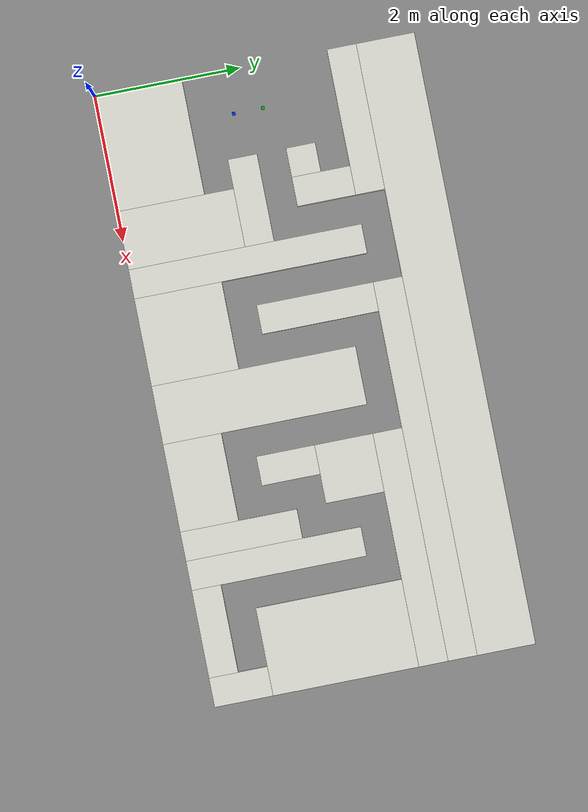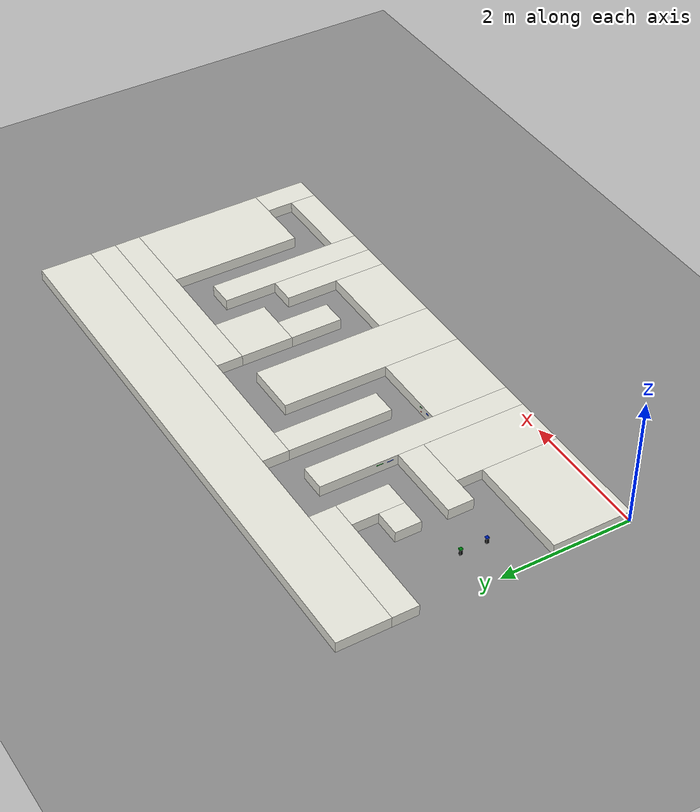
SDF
<sdf version="1.9">
 <world name="ros2_world">
  <model name="ground_plane">
   <static>true</static>
   <link name="link">
    <collision name="collision">
     <geometry><plane><normal>0 0 1</normal><size>30 30</size></plane></geometry>
    </collision>
    <visual name="visual">
     <geometry><plane><normal>0 0 1</normal><size>30 30</size></plane></geometry>
     <material><ambient>0.55 0.55 0.55 1</ambient><diffuse>0.55 0.55 0.55 1</diffuse></material>
    </visual>
   </link>
  </model>
  <model name="paredes">
   <static>true</static>
   <link name="bloque_0">
    <pose>4.2 4 0.085 0 0 0</pose>
    <collision name="colision"><geometry><box><size>8.4 0.8 0.17</size></box></geometry></collision>
    <visual name="visual">
     <geometry><box><size>8.4 0.8 0.17</size></box></geometry>
     <material><ambient>0.9 0.9 0.86 1</ambient><diffuse>0.9 0.9 0.86 1</diffuse></material>
    </visual>
   </link>
   <link name="bloque_1">
    <pose>1 3.4 0.085 0 0 0</pose>
    <collision name="colision"><geometry><box><size>2 0.4 0.17</size></box></geometry></collision>
    <visual name="visual">
     <geometry><box><size>2 0.4 0.17</size></box></geometry>
     <material><ambient>0.9 0.9 0.86 1</ambient><diffuse>0.9 0.9 0.86 1</diffuse></material>
    </visual>
   </link>
   <link name="bloque_2">
    <pose>5.8 3.4 0.085 0 0 0</pose>
    <collision name="colision"><geometry><box><size>5.2 0.4 0.17</size></box></geometry></collision>
    <visual name="visual">
     <geometry><box><size>5.2 0.4 0.17</size></box></geometry>
     <material><ambient>0.9 0.9 0.86 1</ambient><diffuse>0.9 0.9 0.86 1</diffuse></material>
    </visual>
   </link>
   <link name="bloque_3">
    <pose>1.8 2.8 0.085 0 0 0</pose>
    <collision name="colision"><geometry><box><size>0.4 0.8 0.17</size></box></geometry></collision>
    <visual name="visual">
     <geometry><box><size>0.4 0.8 0.17</size></box></geometry>
     <material><ambient>0.9 0.9 0.86 1</ambient><diffuse>0.9 0.9 0.86 1</diffuse></material>
    </visual>
   </link>
   <link name="bloque_4">
    <pose>2.6 1.6 0.085 0 0 0</pose>
    <collision name="colision"><geometry><box><size>0.4 3.2 0.17</size></box></geometry></collision>
    <visual name="visual">
     <geometry><box><size>0.4 3.2 0.17</size></box></geometry>
     <material><ambient>0.9 0.9 0.86 1</ambient><diffuse>0.9 0.9 0.86 1</diffuse></material>
    </visual>
   </link>
   <link name="bloque_5">
    <pose>3.4 2.4 0.085 0 0 0</pose>
    <collision name="colision"><geometry><box><size>0.4 1.6 0.17</size></box></geometry></collision>
    <visual name="visual">
     <geometry><box><size>0.4 1.6 0.17</size></box></geometry>
     <material><ambient>0.9 0.9 0.86 1</ambient><diffuse>0.9 0.9 0.86 1</diffuse></material>
    </visual>
   </link>
   <link name="bloque_6">
    <pose>6.8 3 0.085 0 0 0</pose>
    <collision name="colision"><geometry><box><size>3.2 0.4 0.17</size></box></geometry></collision>
    <visual name="visual">
     <geometry><box><size>3.2 0.4 0.17</size></box></geometry>
     <material><ambient>0.9 0.9 0.86 1</ambient><diffuse>0.9 0.9 0.86 1</diffuse></material>
    </visual>
   </link>
   <link name="bloque_7">
    <pose>1.4 2.6 0.085 0 0 0</pose>
    <collision name="colision"><geometry><box><size>0.4 0.4 0.17</size></box></geometry></collision>
    <visual name="visual">
     <geometry><box><size>0.4 0.4 0.17</size></box></geometry>
     <material><ambient>0.9 0.9 0.86 1</ambient><diffuse>0.9 0.9 0.86 1</diffuse></material>
    </visual>
   </link>
   <link name="bloque_8">
    <pose>4.4 1.4 0.085 0 0 0</pose>
    <collision name="colision"><geometry><box><size>0.8 2.8 0.17</size></box></geometry></collision>
    <visual name="visual">
     <geometry><box><size>0.8 2.8 0.17</size></box></geometry>
     <material><ambient>0.9 0.9 0.86 1</ambient><diffuse>0.9 0.9 0.86 1</diffuse></material>
    </visual>
   </link>
   <link name="bloque_9">
    <pose>5.6 2.4 0.085 0 0 0</pose>
    <collision name="colision"><geometry><box><size>0.8 0.8 0.17</size></box></geometry></collision>
    <visual name="visual">
     <geometry><box><size>0.8 0.8 0.17</size></box></geometry>
     <material><ambient>0.9 0.9 0.86 1</ambient><diffuse>0.9 0.9 0.86 1</diffuse></material>
    </visual>
   </link>
   <link name="bloque_10">
    <pose>7.8 1.8 0.085 0 0 0</pose>
    <collision name="colision"><geometry><box><size>1.2 2 0.17</size></box></geometry></collision>
    <visual name="visual">
     <geometry><box><size>1.2 2 0.17</size></box></geometry>
     <material><ambient>0.9 0.9 0.86 1</ambient><diffuse>0.9 0.9 0.86 1</diffuse></material>
    </visual>
   </link>
   <link name="bloque_11">
    <pose>6.6 1.2 0.085 0 0 0</pose>
    <collision name="colision"><geometry><box><size>0.4 2.4 0.17</size></box></geometry></collision>
    <visual name="visual">
     <geometry><box><size>0.4 2.4 0.17</size></box></geometry>
     <material><ambient>0.9 0.9 0.86 1</ambient><diffuse>0.9 0.9 0.86 1</diffuse></material>
    </visual>
   </link>
   <link name="bloque_12">
    <pose>1.8 1.8 0.085 0 0 0</pose>
    <collision name="colision"><geometry><box><size>1.2 0.4 0.17</size></box></geometry></collision>
    <visual name="visual">
     <geometry><box><size>1.2 0.4 0.17</size></box></geometry>
     <material><ambient>0.9 0.9 0.86 1</ambient><diffuse>0.9 0.9 0.86 1</diffuse></material>
    </visual>
   </link>
   <link name="bloque_13">
    <pose>5.4 1.6 0.085 0 0 0</pose>
    <collision name="colision"><geometry><box><size>0.4 0.8 0.17</size></box></geometry></collision>
    <visual name="visual">
     <geometry><box><size>0.4 0.8 0.17</size></box></geometry>
     <material><ambient>0.9 0.9 0.86 1</ambient><diffuse>0.9 0.9 0.86 1</diffuse></material>
    </visual>
   </link>
   <link name="bloque_14">
    <pose>2 0.8 0.085 0 0 0</pose>
    <collision name="colision"><geometry><box><size>0.8 1.6 0.17</size></box></geometry></collision>
    <visual name="visual">
     <geometry><box><size>0.8 1.6 0.17</size></box></geometry>
     <material><ambient>0.9 0.9 0.86 1</ambient><diffuse>0.9 0.9 0.86 1</diffuse></material>
    </visual>
   </link>
   <link name="bloque_15">
    <pose>6.2 0.8 0.085 0 0 0</pose>
    <collision name="colision"><geometry><box><size>0.4 1.6 0.17</size></box></geometry></collision>
    <visual name="visual">
     <geometry><box><size>0.4 1.6 0.17</size></box></geometry>
     <material><ambient>0.9 0.9 0.86 1</ambient><diffuse>0.9 0.9 0.86 1</diffuse></material>
    </visual>
   </link>
   <link name="bloque_16">
    <pose>0.8 0.6 0.085 0 0 0</pose>
    <collision name="colision"><geometry><box><size>1.6 1.2 0.17</size></box></geometry></collision>
    <visual name="visual">
     <geometry><box><size>1.6 1.2 0.17</size></box></geometry>
     <material><ambient>0.9 0.9 0.86 1</ambient><diffuse>0.9 0.9 0.86 1</diffuse></material>
    </visual>
   </link>
   <link name="bloque_17">
    <pose>3.4 0.6 0.085 0 0 0</pose>
    <collision name="colision"><geometry><box><size>1.2 1.2 0.17</size></box></geometry></collision>
    <visual name="visual">
     <geometry><box><size>1.2 1.2 0.17</size></box></geometry>
     <material><ambient>0.9 0.9 0.86 1</ambient><diffuse>0.9 0.9 0.86 1</diffuse></material>
    </visual>
   </link>
   <link name="bloque_18">
    <pose>5.4 0.4 0.085 0 0 0</pose>
    <collision name="colision"><geometry><box><size>1.2 0.8 0.17</size></box></geometry></collision>
    <visual name="visual">
     <geometry><box><size>1.2 0.8 0.17</size></box></geometry>
     <material><ambient>0.9 0.9 0.86 1</ambient><diffuse>0.9 0.9 0.86 1</diffuse></material>
    </visual>
   </link>
   <link name="bloque_19">
    <pose>8.2 0.4 0.085 0 0 0</pose>
    <collision name="colision"><geometry><box><size>0.4 0.8 0.17</size></box></geometry></collision>
    <visual name="visual">
     <geometry><box><size>0.4 0.8 0.17</size></box></geometry>
     <material><ambient>0.9 0.9 0.86 1</ambient><diffuse>0.9 0.9 0.86 1</diffuse></material>
    </visual>
   </link>
   <link name="bloque_20">
    <pose>7.4 0.2 0.085 0 0 0</pose>
    <collision name="colision"><geometry><box><size>1.2 0.4 0.17</size></box></geometry></collision>
    <visual name="visual">
     <geometry><box><size>1.2 0.4 0.17</size></box></geometry>
     <material><ambient>0.9 0.9 0.86 1</ambient><diffuse>0.9 0.9 0.86 1</diffuse></material>
    </visual>
   </link>
  </model>
  <model name="flechas">
   <static>true</static>
   <link name="flecha_12">
    <pose>2.39875 2.12 0.115 0 0 1.5708</pose>
    <visual name="p0">
     <pose>-0.007 0 0 0 0 0</pose>
     <geometry><box><size>0.085 0.0015 0.01</size></box></geometry>
     <material><ambient>0 0.2 1 1</ambient><diffuse>0 0.2 1 1</diffuse></material>
    </visual>
    <visual name="p1">
     <pose>0.03578 0 0 0 0 0</pose>
     <geometry><box><size>0.00056 0.0015 0.029</size></box></geometry>
     <material><ambient>0 0.2 1 1</ambient><diffuse>0 0.2 1 1</diffuse></material>
    </visual>
    <visual name="p2">
     <pose>0.03634 0 0 0 0 0</pose>
     <geometry><box><size>0.00056 0.0015 0.02784</size></box></geometry>
     <material><ambient>0 0.2 1 1</ambient><diffuse>0 0.2 1 1</diffuse></material>
    </visual>
    <visual name="p3">
     <pose>0.0369 0 0 0 0 0</pose>
     <geometry><box><size>0.00056 0.0015 0.02668</size></box></geometry>
     <material><ambient>0 0.2 1 1</ambient><diffuse>0 0.2 1 1</diffuse></material>
    </visual>
    <visual name="p4">
     <pose>0.03746 0 0 0 0 0</pose>
     <geometry><box><size>0.00056 0.0015 0.02552</size></box></geometry>
     <material><ambient>0 0.2 1 1</ambient><diffuse>0 0.2 1 1</diffuse></material>
    </visual>
    <visual name="p5">
     <pose>0.03802 0 0 0 0 0</pose>
     <geometry><box><size>0.00056 0.0015 0.02436</size></box></geometry>
     <material><ambient>0 0.2 1 1</ambient><diffuse>0 0.2 1 1</diffuse></material>
    </visual>
    <visual name="p6">
     <pose>0.03858 0 0 0 0 0</pose>
     <geometry><box><size>0.00056 0.0015 0.0232</size></box></geometry>
     <material><ambient>0 0.2 1 1</ambient><diffuse>0 0.2 1 1</diffuse></material>
    </visual>
    <visual name="p7">
     <pose>0.03914 0 0 0 0 0</pose>
     <geometry><box><size>0.00056 0.0015 0.02204</size></box></geometry>
     <material><ambient>0 0.2 1 1</ambient><diffuse>0 0.2 1 1</diffuse></material>
    </visual>
    <visual name="p8">
     <pose>0.0397 0 0 0 0 0</pose>
     <geometry><box><size>0.00056 0.0015 0.02088</size></box></geometry>
     <material><ambient>0 0.2 1 1</ambient><diffuse>0 0.2 1 1</diffuse></material>
    </visual>
    <visual name="p9">
     <pose>0.04026 0 0 0 0 0</pose>
     <geometry><box><size>0.00056 0.0015 0.01972</size></box></geometry>
     <material><ambient>0 0.2 1 1</ambient><diffuse>0 0.2 1 1</diffuse></material>
    </visual>
    <visual name="p10">
     <pose>0.04082 0 0 0 0 0</pose>
     <geometry><box><size>0.00056 0.0015 0.01856</size></box></geometry>
     <material><ambient>0 0.2 1 1</ambient><diffuse>0 0.2 1 1</diffuse></material>
    </visual>
    <visual name="p11">
     <pose>0.04138 0 0 0 0 0</pose>
     <geometry><box><size>0.00056 0.0015 0.0174</size></box></geometry>
     <material><ambient>0 0.2 1 1</ambient><diffuse>0 0.2 1 1</diffuse></material>
    </visual>
    <visual name="p12">
     <pose>0.04194 0 0 0 0 0</pose>
     <geometry><box><size>0.00056 0.0015 0.01624</size></box></geometry>
     <material><ambient>0 0.2 1 1</ambient><diffuse>0 0.2 1 1</diffuse></material>
    </visual>
    <visual name="p13">
     <pose>0.0425 0 0 0 0 0</pose>
     <geometry><box><size>0.00056 0.0015 0.01508</size></box></geometry>
     <material><ambient>0 0.2 1 1</ambient><diffuse>0 0.2 1 1</diffuse></material>
    </visual>
    <visual name="p14">
     <pose>0.04306 0 0 0 0 0</pose>
     <geometry><box><size>0.00056 0.0015 0.01392</size></box></geometry>
     <material><ambient>0 0.2 1 1</ambient><diffuse>0 0.2 1 1</diffuse></material>
    </visual>
    <visual name="p15">
     <pose>0.04362 0 0 0 0 0</pose>
     <geometry><box><size>0.00056 0.0015 0.01276</size></box></geometry>
     <material><ambient>0 0.2 1 1</ambient><diffuse>0 0.2 1 1</diffuse></material>
    </visual>
    <visual name="p16">
     <pose>0.04418 0 0 0 0 0</pose>
     <geometry><box><size>0.00056 0.0015 0.0116</size></box></geometry>
     <material><ambient>0 0.2 1 1</ambient><diffuse>0 0.2 1 1</diffuse></material>
    </visual>
    <visual name="p17">
     <pose>0.04474 0 0 0 0 0</pose>
     <geometry><box><size>0.00056 0.0015 0.01044</size></box></geometry>
     <material><ambient>0 0.2 1 1</ambient><diffuse>0 0.2 1 1</diffuse></material>
    </visual>
    <visual name="p18">
     <pose>0.0453 0 0 0 0 0</pose>
     <geometry><box><size>0.00056 0.0015 0.00928</size></box></geometry>
     <material><ambient>0 0.2 1 1</ambient><diffuse>0 0.2 1 1</diffuse></material>
    </visual>
    <visual name="p19">
     <pose>0.04586 0 0 0 0 0</pose>
     <geometry><box><size>0.00056 0.0015 0.00812</size></box></geometry>
     <material><ambient>0 0.2 1 1</ambient><diffuse>0 0.2 1 1</diffuse></material>
    </visual>
    <visual name="p20">
     <pose>0.04642 0 0 0 0 0</pose>
     <geometry><box><size>0.00056 0.0015 0.00696</size></box></geometry>
     <material><ambient>0 0.2 1 1</ambient><diffuse>0 0.2 1 1</diffuse></material>
    </visual>
    <visual name="p21">
     <pose>0.04698 0 0 0 0 0</pose>
     <geometry><box><size>0.00056 0.0015 0.0058</size></box></geometry>
     <material><ambient>0 0.2 1 1</ambient><diffuse>0 0.2 1 1</diffuse></material>
    </visual>
    <visual name="p22">
     <pose>0.04754 0 0 0 0 0</pose>
     <geometry><box><size>0.00056 0.0015 0.00464</size></box></geometry>
     <material><ambient>0 0.2 1 1</ambient><diffuse>0 0.2 1 1</diffuse></material>
    </visual>
    <visual name="p23">
     <pose>0.0481 0 0 0 0 0</pose>
     <geometry><box><size>0.00056 0.0015 0.00348</size></box></geometry>
     <material><ambient>0 0.2 1 1</ambient><diffuse>0 0.2 1 1</diffuse></material>
    </visual>
    <visual name="p24">
     <pose>0.04866 0 0 0 0 0</pose>
     <geometry><box><size>0.00056 0.0015 0.00232</size></box></geometry>
     <material><ambient>0 0.2 1 1</ambient><diffuse>0 0.2 1 1</diffuse></material>
    </visual>
    <visual name="p25">
     <pose>0.04922 0 0 0 0 0</pose>
     <geometry><box><size>0.00056 0.0015 0.00116</size></box></geometry>
     <material><ambient>0 0.2 1 1</ambient><diffuse>0 0.2 1 1</diffuse></material>
    </visual>
   </link>
   <link name="flecha_13">
    <pose>2.39875 2.28 0.125 0 0 1.5708</pose>
    <visual name="p0">
     <pose>-0.007 0 0 0 0 0</pose>
     <geometry><box><size>0.085 0.0015 0.01</size></box></geometry>
     <material><ambient>0 0.7 0.1 1</ambient><diffuse>0 0.7 0.1 1</diffuse></material>
    </visual>
    <visual name="p1">
     <pose>0.03578 0 0 0 0 0</pose>
     <geometry><box><size>0.00056 0.0015 0.029</size></box></geometry>
     <material><ambient>0 0.7 0.1 1</ambient><diffuse>0 0.7 0.1 1</diffuse></material>
    </visual>
    <visual name="p2">
     <pose>0.03634 0 0 0 0 0</pose>
     <geometry><box><size>0.00056 0.0015 0.02784</size></box></geometry>
     <material><ambient>0 0.7 0.1 1</ambient><diffuse>0 0.7 0.1 1</diffuse></material>
    </visual>
    <visual name="p3">
     <pose>0.0369 0 0 0 0 0</pose>
     <geometry><box><size>0.00056 0.0015 0.02668</size></box></geometry>
     <material><ambient>0 0.7 0.1 1</ambient><diffuse>0 0.7 0.1 1</diffuse></material>
    </visual>
    <visual name="p4">
     <pose>0.03746 0 0 0 0 0</pose>
     <geometry><box><size>0.00056 0.0015 0.02552</size></box></geometry>
     <material><ambient>0 0.7 0.1 1</ambient><diffuse>0 0.7 0.1 1</diffuse></material>
    </visual>
    <visual name="p5">
     <pose>0.03802 0 0 0 0 0</pose>
     <geometry><box><size>0.00056 0.0015 0.02436</size></box></geometry>
     <material><ambient>0 0.7 0.1 1</ambient><diffuse>0 0.7 0.1 1</diffuse></material>
    </visual>
    <visual name="p6">
     <pose>0.03858 0 0 0 0 0</pose>
     <geometry><box><size>0.00056 0.0015 0.0232</size></box></geometry>
     <material><ambient>0 0.7 0.1 1</ambient><diffuse>0 0.7 0.1 1</diffuse></material>
    </visual>
    <visual name="p7">
     <pose>0.03914 0 0 0 0 0</pose>
     <geometry><box><size>0.00056 0.0015 0.02204</size></box></geometry>
     <material><ambient>0 0.7 0.1 1</ambient><diffuse>0 0.7 0.1 1</diffuse></material>
    </visual>
    <visual name="p8">
     <pose>0.0397 0 0 0 0 0</pose>
     <geometry><box><size>0.00056 0.0015 0.02088</size></box></geometry>
     <material><ambient>0 0.7 0.1 1</ambient><diffuse>0 0.7 0.1 1</diffuse></material>
    </visual>
    <visual name="p9">
     <pose>0.04026 0 0 0 0 0</pose>
     <geometry><box><size>0.00056 0.0015 0.01972</size></box></geometry>
     <material><ambient>0 0.7 0.1 1</ambient><diffuse>0 0.7 0.1 1</diffuse></material>
    </visual>
    <visual name="p10">
     <pose>0.04082 0 0 0 0 0</pose>
     <geometry><box><size>0.00056 0.0015 0.01856</size></box></geometry>
     <material><ambient>0 0.7 0.1 1</ambient><diffuse>0 0.7 0.1 1</diffuse></material>
    </visual>
    <visual name="p11">
     <pose>0.04138 0 0 0 0 0</pose>
     <geometry><box><size>0.00056 0.0015 0.0174</size></box></geometry>
     <material><ambient>0 0.7 0.1 1</ambient><diffuse>0 0.7 0.1 1</diffuse></material>
    </visual>
    <visual name="p12">
     <pose>0.04194 0 0 0 0 0</pose>
     <geometry><box><size>0.00056 0.0015 0.01624</size></box></geometry>
     <material><ambient>0 0.7 0.1 1</ambient><diffuse>0 0.7 0.1 1</diffuse></material>
    </visual>
    <visual name="p13">
     <pose>0.0425 0 0 0 0 0</pose>
     <geometry><box><size>0.00056 0.0015 0.01508</size></box></geometry>
     <material><ambient>0 0.7 0.1 1</ambient><diffuse>0 0.7 0.1 1</diffuse></material>
    </visual>
    <visual name="p14">
     <pose>0.04306 0 0 0 0 0</pose>
     <geometry><box><size>0.00056 0.0015 0.01392</size></box></geometry>
     <material><ambient>0 0.7 0.1 1</ambient><diffuse>0 0.7 0.1 1</diffuse></material>
    </visual>
    <visual name="p15">
     <pose>0.04362 0 0 0 0 0</pose>
     <geometry><box><size>0.00056 0.0015 0.01276</size></box></geometry>
     <material><ambient>0 0.7 0.1 1</ambient><diffuse>0 0.7 0.1 1</diffuse></material>
    </visual>
    <visual name="p16">
     <pose>0.04418 0 0 0 0 0</pose>
     <geometry><box><size>0.00056 0.0015 0.0116</size></box></geometry>
     <material><ambient>0 0.7 0.1 1</ambient><diffuse>0 0.7 0.1 1</diffuse></material>
    </visual>
    <visual name="p17">
     <pose>0.04474 0 0 0 0 0</pose>
     <geometry><box><size>0.00056 0.0015 0.01044</size></box></geometry>
     <material><ambient>0 0.7 0.1 1</ambient><diffuse>0 0.7 0.1 1</diffuse></material>
    </visual>
    <visual name="p18">
     <pose>0.0453 0 0 0 0 0</pose>
     <geometry><box><size>0.00056 0.0015 0.00928</size></box></geometry>
     <material><ambient>0 0.7 0.1 1</ambient><diffuse>0 0.7 0.1 1</diffuse></material>
    </visual>
    <visual name="p19">
     <pose>0.04586 0 0 0 0 0</pose>
     <geometry><box><size>0.00056 0.0015 0.00812</size></box></geometry>
     <material><ambient>0 0.7 0.1 1</ambient><diffuse>0 0.7 0.1 1</diffuse></material>
    </visual>
    <visual name="p20">
     <pose>0.04642 0 0 0 0 0</pose>
     <geometry><box><size>0.00056 0.0015 0.00696</size></box></geometry>
     <material><ambient>0 0.7 0.1 1</ambient><diffuse>0 0.7 0.1 1</diffuse></material>
    </visual>
    <visual name="p21">
     <pose>0.04698 0 0 0 0 0</pose>
     <geometry><box><size>0.00056 0.0015 0.0058</size></box></geometry>
     <material><ambient>0 0.7 0.1 1</ambient><diffuse>0 0.7 0.1 1</diffuse></material>
    </visual>
    <visual name="p22">
     <pose>0.04754 0 0 0 0 0</pose>
     <geometry><box><size>0.00056 0.0015 0.00464</size></box></geometry>
     <material><ambient>0 0.7 0.1 1</ambient><diffuse>0 0.7 0.1 1</diffuse></material>
    </visual>
    <visual name="p23">
     <pose>0.0481 0 0 0 0 0</pose>
     <geometry><box><size>0.00056 0.0015 0.00348</size></box></geometry>
     <material><ambient>0 0.7 0.1 1</ambient><diffuse>0 0.7 0.1 1</diffuse></material>
    </visual>
    <visual name="p24">
     <pose>0.04866 0 0 0 0 0</pose>
     <geometry><box><size>0.00056 0.0015 0.00232</size></box></geometry>
     <material><ambient>0 0.7 0.1 1</ambient><diffuse>0 0.7 0.1 1</diffuse></material>
    </visual>
    <visual name="p25">
     <pose>0.04922 0 0 0 0 0</pose>
     <geometry><box><size>0.00056 0.0015 0.00116</size></box></geometry>
     <material><ambient>0 0.7 0.1 1</ambient><diffuse>0 0.7 0.1 1</diffuse></material>
    </visual>
   </link>
   <link name="flecha_17">
    <pose>2.92 1.20125 0.115 0 0 0</pose>
    <visual name="p0">
     <pose>-0.0065 0 0 0 0 0</pose>
     <geometry><box><size>0.047 0.0015 0.01</size></box></geometry>
     <material><ambient>0 0.2 1 1</ambient><diffuse>0 0.2 1 1</diffuse></material>
    </visual>
    <visual name="p1">
     <pose>0.01726 0 0 0 0 0</pose>
     <geometry><box><size>0.00052 0.0015 0.029</size></box></geometry>
     <material><ambient>0 0.2 1 1</ambient><diffuse>0 0.2 1 1</diffuse></material>
    </visual>
    <visual name="p2">
     <pose>0.01778 0 0 0 0 0</pose>
     <geometry><box><size>0.00052 0.0015 0.02784</size></box></geometry>
     <material><ambient>0 0.2 1 1</ambient><diffuse>0 0.2 1 1</diffuse></material>
    </visual>
    <visual name="p3">
     <pose>0.0183 0 0 0 0 0</pose>
     <geometry><box><size>0.00052 0.0015 0.02668</size></box></geometry>
     <material><ambient>0 0.2 1 1</ambient><diffuse>0 0.2 1 1</diffuse></material>
    </visual>
    <visual name="p4">
     <pose>0.01882 0 0 0 0 0</pose>
     <geometry><box><size>0.00052 0.0015 0.02552</size></box></geometry>
     <material><ambient>0 0.2 1 1</ambient><diffuse>0 0.2 1 1</diffuse></material>
    </visual>
    <visual name="p5">
     <pose>0.01934 0 0 0 0 0</pose>
     <geometry><box><size>0.00052 0.0015 0.02436</size></box></geometry>
     <material><ambient>0 0.2 1 1</ambient><diffuse>0 0.2 1 1</diffuse></material>
    </visual>
    <visual name="p6">
     <pose>0.01986 0 0 0 0 0</pose>
     <geometry><box><size>0.00052 0.0015 0.0232</size></box></geometry>
     <material><ambient>0 0.2 1 1</ambient><diffuse>0 0.2 1 1</diffuse></material>
    </visual>
    <visual name="p7">
     <pose>0.02038 0 0 0 0 0</pose>
     <geometry><box><size>0.00052 0.0015 0.02204</size></box></geometry>
     <material><ambient>0 0.2 1 1</ambient><diffuse>0 0.2 1 1</diffuse></material>
    </visual>
    <visual name="p8">
     <pose>0.0209 0 0 0 0 0</pose>
     <geometry><box><size>0.00052 0.0015 0.02088</size></box></geometry>
     <material><ambient>0 0.2 1 1</ambient><diffuse>0 0.2 1 1</diffuse></material>
    </visual>
    <visual name="p9">
     <pose>0.02142 0 0 0 0 0</pose>
     <geometry><box><size>0.00052 0.0015 0.01972</size></box></geometry>
     <material><ambient>0 0.2 1 1</ambient><diffuse>0 0.2 1 1</diffuse></material>
    </visual>
    <visual name="p10">
     <pose>0.02194 0 0 0 0 0</pose>
     <geometry><box><size>0.00052 0.0015 0.01856</size></box></geometry>
     <material><ambient>0 0.2 1 1</ambient><diffuse>0 0.2 1 1</diffuse></material>
    </visual>
    <visual name="p11">
     <pose>0.02246 0 0 0 0 0</pose>
     <geometry><box><size>0.00052 0.0015 0.0174</size></box></geometry>
     <material><ambient>0 0.2 1 1</ambient><diffuse>0 0.2 1 1</diffuse></material>
    </visual>
    <visual name="p12">
     <pose>0.02298 0 0 0 0 0</pose>
     <geometry><box><size>0.00052 0.0015 0.01624</size></box></geometry>
     <material><ambient>0 0.2 1 1</ambient><diffuse>0 0.2 1 1</diffuse></material>
    </visual>
    <visual name="p13">
     <pose>0.0235 0 0 0 0 0</pose>
     <geometry><box><size>0.00052 0.0015 0.01508</size></box></geometry>
     <material><ambient>0 0.2 1 1</ambient><diffuse>0 0.2 1 1</diffuse></material>
    </visual>
    <visual name="p14">
     <pose>0.02402 0 0 0 0 0</pose>
     <geometry><box><size>0.00052 0.0015 0.01392</size></box></geometry>
     <material><ambient>0 0.2 1 1</ambient><diffuse>0 0.2 1 1</diffuse></material>
    </visual>
    <visual name="p15">
     <pose>0.02454 0 0 0 0 0</pose>
     <geometry><box><size>0.00052 0.0015 0.01276</size></box></geometry>
     <material><ambient>0 0.2 1 1</ambient><diffuse>0 0.2 1 1</diffuse></material>
    </visual>
    <visual name="p16">
     <pose>0.02506 0 0 0 0 0</pose>
     <geometry><box><size>0.00052 0.0015 0.0116</size></box></geometry>
     <material><ambient>0 0.2 1 1</ambient><diffuse>0 0.2 1 1</diffuse></material>
    </visual>
    <visual name="p17">
     <pose>0.02558 0 0 0 0 0</pose>
     <geometry><box><size>0.00052 0.0015 0.01044</size></box></geometry>
     <material><ambient>0 0.2 1 1</ambient><diffuse>0 0.2 1 1</diffuse></material>
    </visual>
    <visual name="p18">
     <pose>0.0261 0 0 0 0 0</pose>
     <geometry><box><size>0.00052 0.0015 0.00928</size></box></geometry>
     <material><ambient>0 0.2 1 1</ambient><diffuse>0 0.2 1 1</diffuse></material>
    </visual>
    <visual name="p19">
     <pose>0.02662 0 0 0 0 0</pose>
     <geometry><box><size>0.00052 0.0015 0.00812</size></box></geometry>
     <material><ambient>0 0.2 1 1</ambient><diffuse>0 0.2 1 1</diffuse></material>
    </visual>
    <visual name="p20">
     <pose>0.02714 0 0 0 0 0</pose>
     <geometry><box><size>0.00052 0.0015 0.00696</size></box></geometry>
     <material><ambient>0 0.2 1 1</ambient><diffuse>0 0.2 1 1</diffuse></material>
    </visual>
    <visual name="p21">
     <pose>0.02766 0 0 0 0 0</pose>
     <geometry><box><size>0.00052 0.0015 0.0058</size></box></geometry>
     <material><ambient>0 0.2 1 1</ambient><diffuse>0 0.2 1 1</diffuse></material>
    </visual>
    <visual name="p22">
     <pose>0.02818 0 0 0 0 0</pose>
     <geometry><box><size>0.00052 0.0015 0.00464</size></box></geometry>
     <material><ambient>0 0.2 1 1</ambient><diffuse>0 0.2 1 1</diffuse></material>
    </visual>
    <visual name="p23">
     <pose>0.0287 0 0 0 0 0</pose>
     <geometry><box><size>0.00052 0.0015 0.00348</size></box></geometry>
     <material><ambient>0 0.2 1 1</ambient><diffuse>0 0.2 1 1</diffuse></material>
    </visual>
    <visual name="p24">
     <pose>0.02922 0 0 0 0 0</pose>
     <geometry><box><size>0.00052 0.0015 0.00232</size></box></geometry>
     <material><ambient>0 0.2 1 1</ambient><diffuse>0 0.2 1 1</diffuse></material>
    </visual>
    <visual name="p25">
     <pose>0.02974 0 0 0 0 0</pose>
     <geometry><box><size>0.00052 0.0015 0.00116</size></box></geometry>
     <material><ambient>0 0.2 1 1</ambient><diffuse>0 0.2 1 1</diffuse></material>
    </visual>
   </link>
   <link name="flecha_18">
    <pose>3.08 1.20125 0.125 0 0 0</pose>
    <visual name="p0">
     <pose>-0.0065 0 0 0 0 0</pose>
     <geometry><box><size>0.047 0.0015 0.01</size></box></geometry>
     <material><ambient>0 0.7 0.1 1</ambient><diffuse>0 0.7 0.1 1</diffuse></material>
    </visual>
    <visual name="p1">
     <pose>0.01726 0 0 0 0 0</pose>
     <geometry><box><size>0.00052 0.0015 0.029</size></box></geometry>
     <material><ambient>0 0.7 0.1 1</ambient><diffuse>0 0.7 0.1 1</diffuse></material>
    </visual>
    <visual name="p2">
     <pose>0.01778 0 0 0 0 0</pose>
     <geometry><box><size>0.00052 0.0015 0.02784</size></box></geometry>
     <material><ambient>0 0.7 0.1 1</ambient><diffuse>0 0.7 0.1 1</diffuse></material>
    </visual>
    <visual name="p3">
     <pose>0.0183 0 0 0 0 0</pose>
     <geometry><box><size>0.00052 0.0015 0.02668</size></box></geometry>
     <material><ambient>0 0.7 0.1 1</ambient><diffuse>0 0.7 0.1 1</diffuse></material>
    </visual>
    <visual name="p4">
     <pose>0.01882 0 0 0 0 0</pose>
     <geometry><box><size>0.00052 0.0015 0.02552</size></box></geometry>
     <material><ambient>0 0.7 0.1 1</ambient><diffuse>0 0.7 0.1 1</diffuse></material>
    </visual>
    <visual name="p5">
     <pose>0.01934 0 0 0 0 0</pose>
     <geometry><box><size>0.00052 0.0015 0.02436</size></box></geometry>
     <material><ambient>0 0.7 0.1 1</ambient><diffuse>0 0.7 0.1 1</diffuse></material>
    </visual>
    <visual name="p6">
     <pose>0.01986 0 0 0 0 0</pose>
     <geometry><box><size>0.00052 0.0015 0.0232</size></box></geometry>
     <material><ambient>0 0.7 0.1 1</ambient><diffuse>0 0.7 0.1 1</diffuse></material>
    </visual>
    <visual name="p7">
     <pose>0.02038 0 0 0 0 0</pose>
     <geometry><box><size>0.00052 0.0015 0.02204</size></box></geometry>
     <material><ambient>0 0.7 0.1 1</ambient><diffuse>0 0.7 0.1 1</diffuse></material>
    </visual>
    <visual name="p8">
     <pose>0.0209 0 0 0 0 0</pose>
     <geometry><box><size>0.00052 0.0015 0.02088</size></box></geometry>
     <material><ambient>0 0.7 0.1 1</ambient><diffuse>0 0.7 0.1 1</diffuse></material>
    </visual>
    <visual name="p9">
     <pose>0.02142 0 0 0 0 0</pose>
     <geometry><box><size>0.00052 0.0015 0.01972</size></box></geometry>
     <material><ambient>0 0.7 0.1 1</ambient><diffuse>0 0.7 0.1 1</diffuse></material>
    </visual>
    <visual name="p10">
     <pose>0.02194 0 0 0 0 0</pose>
     <geometry><box><size>0.00052 0.0015 0.01856</size></box></geometry>
     <material><ambient>0 0.7 0.1 1</ambient><diffuse>0 0.7 0.1 1</diffuse></material>
    </visual>
    <visual name="p11">
     <pose>0.02246 0 0 0 0 0</pose>
     <geometry><box><size>0.00052 0.0015 0.0174</size></box></geometry>
     <material><ambient>0 0.7 0.1 1</ambient><diffuse>0 0.7 0.1 1</diffuse></material>
    </visual>
    <visual name="p12">
     <pose>0.02298 0 0 0 0 0</pose>
     <geometry><box><size>0.00052 0.0015 0.01624</size></box></geometry>
     <material><ambient>0 0.7 0.1 1</ambient><diffuse>0 0.7 0.1 1</diffuse></material>
    </visual>
    <visual name="p13">
     <pose>0.0235 0 0 0 0 0</pose>
     <geometry><box><size>0.00052 0.0015 0.01508</size></box></geometry>
     <material><ambient>0 0.7 0.1 1</ambient><diffuse>0 0.7 0.1 1</diffuse></material>
    </visual>
    <visual name="p14">
     <pose>0.02402 0 0 0 0 0</pose>
     <geometry><box><size>0.00052 0.0015 0.01392</size></box></geometry>
     <material><ambient>0 0.7 0.1 1</ambient><diffuse>0 0.7 0.1 1</diffuse></material>
    </visual>
    <visual name="p15">
     <pose>0.02454 0 0 0 0 0</pose>
     <geometry><box><size>0.00052 0.0015 0.01276</size></box></geometry>
     <material><ambient>0 0.7 0.1 1</ambient><diffuse>0 0.7 0.1 1</diffuse></material>
    </visual>
    <visual name="p16">
     <pose>0.02506 0 0 0 0 0</pose>
     <geometry><box><size>0.00052 0.0015 0.0116</size></box></geometry>
     <material><ambient>0 0.7 0.1 1</ambient><diffuse>0 0.7 0.1 1</diffuse></material>
    </visual>
    <visual name="p17">
     <pose>0.02558 0 0 0 0 0</pose>
     <geometry><box><size>0.00052 0.0015 0.01044</size></box></geometry>
     <material><ambient>0 0.7 0.1 1</ambient><diffuse>0 0.7 0.1 1</diffuse></material>
    </visual>
    <visual name="p18">
     <pose>0.0261 0 0 0 0 0</pose>
     <geometry><box><size>0.00052 0.0015 0.00928</size></box></geometry>
     <material><ambient>0 0.7 0.1 1</ambient><diffuse>0 0.7 0.1 1</diffuse></material>
    </visual>
    <visual name="p19">
     <pose>0.02662 0 0 0 0 0</pose>
     <geometry><box><size>0.00052 0.0015 0.00812</size></box></geometry>
     <material><ambient>0 0.7 0.1 1</ambient><diffuse>0 0.7 0.1 1</diffuse></material>
    </visual>
    <visual name="p20">
     <pose>0.02714 0 0 0 0 0</pose>
     <geometry><box><size>0.00052 0.0015 0.00696</size></box></geometry>
     <material><ambient>0 0.7 0.1 1</ambient><diffuse>0 0.7 0.1 1</diffuse></material>
    </visual>
    <visual name="p21">
     <pose>0.02766 0 0 0 0 0</pose>
     <geometry><box><size>0.00052 0.0015 0.0058</size></box></geometry>
     <material><ambient>0 0.7 0.1 1</ambient><diffuse>0 0.7 0.1 1</diffuse></material>
    </visual>
    <visual name="p22">
     <pose>0.02818 0 0 0 0 0</pose>
     <geometry><box><size>0.00052 0.0015 0.00464</size></box></geometry>
     <material><ambient>0 0.7 0.1 1</ambient><diffuse>0 0.7 0.1 1</diffuse></material>
    </visual>
    <visual name="p23">
     <pose>0.0287 0 0 0 0 0</pose>
     <geometry><box><size>0.00052 0.0015 0.00348</size></box></geometry>
     <material><ambient>0 0.7 0.1 1</ambient><diffuse>0 0.7 0.1 1</diffuse></material>
    </visual>
    <visual name="p24">
     <pose>0.02922 0 0 0 0 0</pose>
     <geometry><box><size>0.00052 0.0015 0.00232</size></box></geometry>
     <material><ambient>0 0.7 0.1 1</ambient><diffuse>0 0.7 0.1 1</diffuse></material>
    </visual>
    <visual name="p25">
     <pose>0.02974 0 0 0 0 0</pose>
     <geometry><box><size>0.00052 0.0015 0.00116</size></box></geometry>
     <material><ambient>0 0.7 0.1 1</ambient><diffuse>0 0.7 0.1 1</diffuse></material>
    </visual>
   </link>
   <link name="flecha_19">
    <pose>3.08 1.20125 0.045 0 0 0</pose>
    <visual name="p0">
     <pose>-0.0055 0 0 0 0 0</pose>
     <geometry><box><size>0.019 0.0015 0.01</size></box></geometry>
     <material><ambient>1 0 0 1</ambient><diffuse>1 0 0 1</diffuse></material>
    </visual>
    <visual name="p1">
     <pose>0.00422 0 0 0 0 0</pose>
     <geometry><box><size>0.00044 0.0015 0.03</size></box></geometry>
     <material><ambient>1 0 0 1</ambient><diffuse>1 0 0 1</diffuse></material>
    </visual>
    <visual name="p2">
     <pose>0.00466 0 0 0 0 0</pose>
     <geometry><box><size>0.00044 0.0015 0.0288</size></box></geometry>
     <material><ambient>1 0 0 1</ambient><diffuse>1 0 0 1</diffuse></material>
    </visual>
    <visual name="p3">
     <pose>0.0051 0 0 0 0 0</pose>
     <geometry><box><size>0.00044 0.0015 0.0276</size></box></geometry>
     <material><ambient>1 0 0 1</ambient><diffuse>1 0 0 1</diffuse></material>
    </visual>
    <visual name="p4">
     <pose>0.00554 0 0 0 0 0</pose>
     <geometry><box><size>0.00044 0.0015 0.0264</size></box></geometry>
     <material><ambient>1 0 0 1</ambient><diffuse>1 0 0 1</diffuse></material>
    </visual>
    <visual name="p5">
     <pose>0.00598 0 0 0 0 0</pose>
     <geometry><box><size>0.00044 0.0015 0.0252</size></box></geometry>
     <material><ambient>1 0 0 1</ambient><diffuse>1 0 0 1</diffuse></material>
    </visual>
    <visual name="p6">
     <pose>0.00642 0 0 0 0 0</pose>
     <geometry><box><size>0.00044 0.0015 0.024</size></box></geometry>
     <material><ambient>1 0 0 1</ambient><diffuse>1 0 0 1</diffuse></material>
    </visual>
    <visual name="p7">
     <pose>0.00686 0 0 0 0 0</pose>
     <geometry><box><size>0.00044 0.0015 0.0228</size></box></geometry>
     <material><ambient>1 0 0 1</ambient><diffuse>1 0 0 1</diffuse></material>
    </visual>
    <visual name="p8">
     <pose>0.0073 0 0 0 0 0</pose>
     <geometry><box><size>0.00044 0.0015 0.0216</size></box></geometry>
     <material><ambient>1 0 0 1</ambient><diffuse>1 0 0 1</diffuse></material>
    </visual>
    <visual name="p9">
     <pose>0.00774 0 0 0 0 0</pose>
     <geometry><box><size>0.00044 0.0015 0.0204</size></box></geometry>
     <material><ambient>1 0 0 1</ambient><diffuse>1 0 0 1</diffuse></material>
    </visual>
    <visual name="p10">
     <pose>0.00818 0 0 0 0 0</pose>
     <geometry><box><size>0.00044 0.0015 0.0192</size></box></geometry>
     <material><ambient>1 0 0 1</ambient><diffuse>1 0 0 1</diffuse></material>
    </visual>
    <visual name="p11">
     <pose>0.00862 0 0 0 0 0</pose>
     <geometry><box><size>0.00044 0.0015 0.018</size></box></geometry>
     <material><ambient>1 0 0 1</ambient><diffuse>1 0 0 1</diffuse></material>
    </visual>
    <visual name="p12">
     <pose>0.00906 0 0 0 0 0</pose>
     <geometry><box><size>0.00044 0.0015 0.0168</size></box></geometry>
     <material><ambient>1 0 0 1</ambient><diffuse>1 0 0 1</diffuse></material>
    </visual>
    <visual name="p13">
     <pose>0.0095 0 0 0 0 0</pose>
     <geometry><box><size>0.00044 0.0015 0.0156</size></box></geometry>
     <material><ambient>1 0 0 1</ambient><diffuse>1 0 0 1</diffuse></material>
    </visual>
    <visual name="p14">
     <pose>0.00994 0 0 0 0 0</pose>
     <geometry><box><size>0.00044 0.0015 0.0144</size></box></geometry>
     <material><ambient>1 0 0 1</ambient><diffuse>1 0 0 1</diffuse></material>
    </visual>
    <visual name="p15">
     <pose>0.01038 0 0 0 0 0</pose>
     <geometry><box><size>0.00044 0.0015 0.0132</size></box></geometry>
     <material><ambient>1 0 0 1</ambient><diffuse>1 0 0 1</diffuse></material>
    </visual>
    <visual name="p16">
     <pose>0.01082 0 0 0 0 0</pose>
     <geometry><box><size>0.00044 0.0015 0.012</size></box></geometry>
     <material><ambient>1 0 0 1</ambient><diffuse>1 0 0 1</diffuse></material>
    </visual>
    <visual name="p17">
     <pose>0.01126 0 0 0 0 0</pose>
     <geometry><box><size>0.00044 0.0015 0.0108</size></box></geometry>
     <material><ambient>1 0 0 1</ambient><diffuse>1 0 0 1</diffuse></material>
    </visual>
    <visual name="p18">
     <pose>0.0117 0 0 0 0 0</pose>
     <geometry><box><size>0.00044 0.0015 0.0096</size></box></geometry>
     <material><ambient>1 0 0 1</ambient><diffuse>1 0 0 1</diffuse></material>
    </visual>
    <visual name="p19">
     <pose>0.01214 0 0 0 0 0</pose>
     <geometry><box><size>0.00044 0.0015 0.0084</size></box></geometry>
     <material><ambient>1 0 0 1</ambient><diffuse>1 0 0 1</diffuse></material>
    </visual>
    <visual name="p20">
     <pose>0.01258 0 0 0 0 0</pose>
     <geometry><box><size>0.00044 0.0015 0.0072</size></box></geometry>
     <material><ambient>1 0 0 1</ambient><diffuse>1 0 0 1</diffuse></material>
    </visual>
    <visual name="p21">
     <pose>0.01302 0 0 0 0 0</pose>
     <geometry><box><size>0.00044 0.0015 0.006</size></box></geometry>
     <material><ambient>1 0 0 1</ambient><diffuse>1 0 0 1</diffuse></material>
    </visual>
    <visual name="p22">
     <pose>0.01346 0 0 0 0 0</pose>
     <geometry><box><size>0.00044 0.0015 0.0048</size></box></geometry>
     <material><ambient>1 0 0 1</ambient><diffuse>1 0 0 1</diffuse></material>
    </visual>
    <visual name="p23">
     <pose>0.0139 0 0 0 0 0</pose>
     <geometry><box><size>0.00044 0.0015 0.0036</size></box></geometry>
     <material><ambient>1 0 0 1</ambient><diffuse>1 0 0 1</diffuse></material>
    </visual>
    <visual name="p24">
     <pose>0.01434 0 0 0 0 0</pose>
     <geometry><box><size>0.00044 0.0015 0.0024</size></box></geometry>
     <material><ambient>1 0 0 1</ambient><diffuse>1 0 0 1</diffuse></material>
    </visual>
    <visual name="p25">
     <pose>0.01478 0 0 0 0 0</pose>
     <geometry><box><size>0.00044 0.0015 0.0012</size></box></geometry>
     <material><ambient>1 0 0 1</ambient><diffuse>1 0 0 1</diffuse></material>
    </visual>
   </link>
  </model>
  <model name="soporte_canasto_verde">
   <static>true</static>
   <pose>0.6 2.2 0.04425 0 0 0</pose>
   <link name="link">
    <collision name="colision"><geometry><box><size>0.036 0.036 0.0885</size></box></geometry></collision>
    <visual name="visual">
     <geometry><box><size>0.036 0.036 0.0885</size></box></geometry>
     <material><ambient>0.05 0.05 0.05 1</ambient><diffuse>0.05 0.05 0.05 1</diffuse></material>
    </visual>
   </link>
  </model>
  <model name="canasto_verde">
   <static>true</static>
   <pose>0.6 2.2 0.0885 0 0 0</pose>
   <link name="link">
    <collision name="c_fondo">
     <pose>0 0 0.0005 0 0 0</pose>
     <geometry><box><size>0.044 0.044 0.001</size></box></geometry>
     <surface><friction><ode><mu>1</mu><mu2>1</mu2></ode></friction></surface>
    </collision>
    <visual name="v_fondo">
     <pose>0 0 0.0005 0 0 0</pose>
     <geometry><box><size>0.044 0.044 0.001</size></box></geometry>
     <material><ambient>0 0.7 0.1 1</ambient><diffuse>0 0.7 0.1 1</diffuse></material>
    </visual>
    <collision name="c_pared_n">
     <pose>0 0.021 0.01 0 0 0</pose>
     <geometry><box><size>0.044 0.002 0.02</size></box></geometry>
     <surface><friction><ode><mu>1</mu><mu2>1</mu2></ode></friction></surface>
    </collision>
    <visual name="v_pared_n">
     <pose>0 0.021 0.01 0 0 0</pose>
     <geometry><box><size>0.044 0.002 0.02</size></box></geometry>
     <material><ambient>0 0.7 0.1 1</ambient><diffuse>0 0.7 0.1 1</diffuse></material>
    </visual>
    <collision name="c_pared_s">
     <pose>0 -0.021 0.01 0 0 0</pose>
     <geometry><box><size>0.044 0.002 0.02</size></box></geometry>
     <surface><friction><ode><mu>1</mu><mu2>1</mu2></ode></friction></surface>
    </collision>
    <visual name="v_pared_s">
     <pose>0 -0.021 0.01 0 0 0</pose>
     <geometry><box><size>0.044 0.002 0.02</size></box></geometry>
     <material><ambient>0 0.7 0.1 1</ambient><diffuse>0 0.7 0.1 1</diffuse></material>
    </visual>
    <collision name="c_pared_e">
     <pose>0.021 0 0.01 0 0 0</pose>
     <geometry><box><size>0.002 0.04 0.02</size></box></geometry>
     <surface><friction><ode><mu>1</mu><mu2>1</mu2></ode></friction></surface>
    </collision>
    <visual name="v_pared_e">
     <pose>0.021 0 0.01 0 0 0</pose>
     <geometry><box><size>0.002 0.04 0.02</size></box></geometry>
     <material><ambient>0 0.7 0.1 1</ambient><diffuse>0 0.7 0.1 1</diffuse></material>
    </visual>
    <collision name="c_pared_o">
     <pose>-0.021 0 0.01 0 0 0</pose>
     <geometry><box><size>0.002 0.04 0.02</size></box></geometry>
     <surface><friction><ode><mu>1</mu><mu2>1</mu2></ode></friction></surface>
    </collision>
    <visual name="v_pared_o">
     <pose>-0.021 0 0.01 0 0 0</pose>
     <geometry><box><size>0.002 0.04 0.02</size></box></geometry>
     <material><ambient>0 0.7 0.1 1</ambient><diffuse>0 0.7 0.1 1</diffuse></material>
    </visual>
   </link>
  </model>
  <model name="soporte_canasto_azul">
   <static>true</static>
   <pose>0.6 1.8 0.04425 0 0 0</pose>
   <link name="link">
    <collision name="colision"><geometry><box><size>0.036 0.036 0.0885</size></box></geometry></collision>
    <visual name="visual">
     <geometry><box><size>0.036 0.036 0.0885</size></box></geometry>
     <material><ambient>0.05 0.05 0.05 1</ambient><diffuse>0.05 0.05 0.05 1</diffuse></material>
    </visual>
   </link>
  </model>
  <model name="canasto_azul">
   <static>true</static>
   <pose>0.6 1.8 0.0885 0 0 0</pose>
   <link name="link">
    <collision name="c_fondo">
     <pose>0 0 0.0005 0 0 0</pose>
     <geometry><box><size>0.044 0.044 0.001</size></box></geometry>
     <surface><friction><ode><mu>1</mu><mu2>1</mu2></ode></friction></surface>
    </collision>
    <visual name="v_fondo">
     <pose>0 0 0.0005 0 0 0</pose>
     <geometry><box><size>0.044 0.044 0.001</size></box></geometry>
     <material><ambient>0 0.2 1 1</ambient><diffuse>0 0.2 1 1</diffuse></material>
    </visual>
    <collision name="c_pared_n">
     <pose>0 0.021 0.01 0 0 0</pose>
     <geometry><box><size>0.044 0.002 0.02</size></box></geometry>
     <surface><friction><ode><mu>1</mu><mu2>1</mu2></ode></friction></surface>
    </collision>
    <visual name="v_pared_n">
     <pose>0 0.021 0.01 0 0 0</pose>
     <geometry><box><size>0.044 0.002 0.02</size></box></geometry>
     <material><ambient>0 0.2 1 1</ambient><diffuse>0 0.2 1 1</diffuse></material>
    </visual>
    <collision name="c_pared_s">
     <pose>0 -0.021 0.01 0 0 0</pose>
     <geometry><box><size>0.044 0.002 0.02</size></box></geometry>
     <surface><friction><ode><mu>1</mu><mu2>1</mu2></ode></friction></surface>
    </collision>
    <visual name="v_pared_s">
     <pose>0 -0.021 0.01 0 0 0</pose>
     <geometry><box><size>0.044 0.002 0.02</size></box></geometry>
     <material><ambient>0 0.2 1 1</ambient><diffuse>0 0.2 1 1</diffuse></material>
    </visual>
    <collision name="c_pared_e">
     <pose>0.021 0 0.01 0 0 0</pose>
     <geometry><box><size>0.002 0.04 0.02</size></box></geometry>
     <surface><friction><ode><mu>1</mu><mu2>1</mu2></ode></friction></surface>
    </collision>
    <visual name="v_pared_e">
     <pose>0.021 0 0.01 0 0 0</pose>
     <geometry><box><size>0.002 0.04 0.02</size></box></geometry>
     <material><ambient>0 0.2 1 1</ambient><diffuse>0 0.2 1 1</diffuse></material>
    </visual>
    <collision name="c_pared_o">
     <pose>-0.021 0 0.01 0 0 0</pose>
     <geometry><box><size>0.002 0.04 0.02</size></box></geometry>
     <surface><friction><ode><mu>1</mu><mu2>1</mu2></ode></friction></surface>
    </collision>
    <visual name="v_pared_o">
     <pose>-0.021 0 0.01 0 0 0</pose>
     <geometry><box><size>0.002 0.04 0.02</size></box></geometry>
     <material><ambient>0 0.2 1 1</ambient><diffuse>0 0.2 1 1</diffuse></material>
    </visual>
   </link>
  </model>
 </world>
</sdf>
